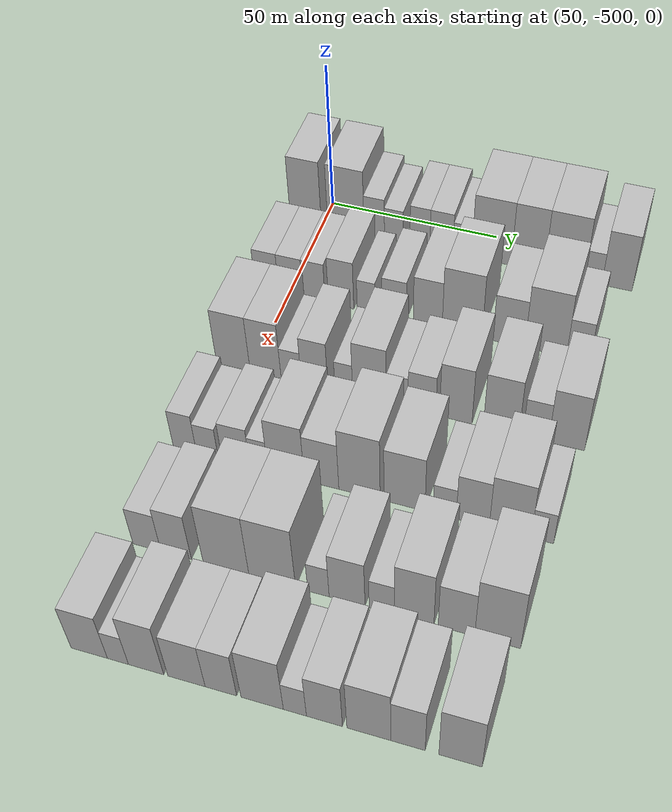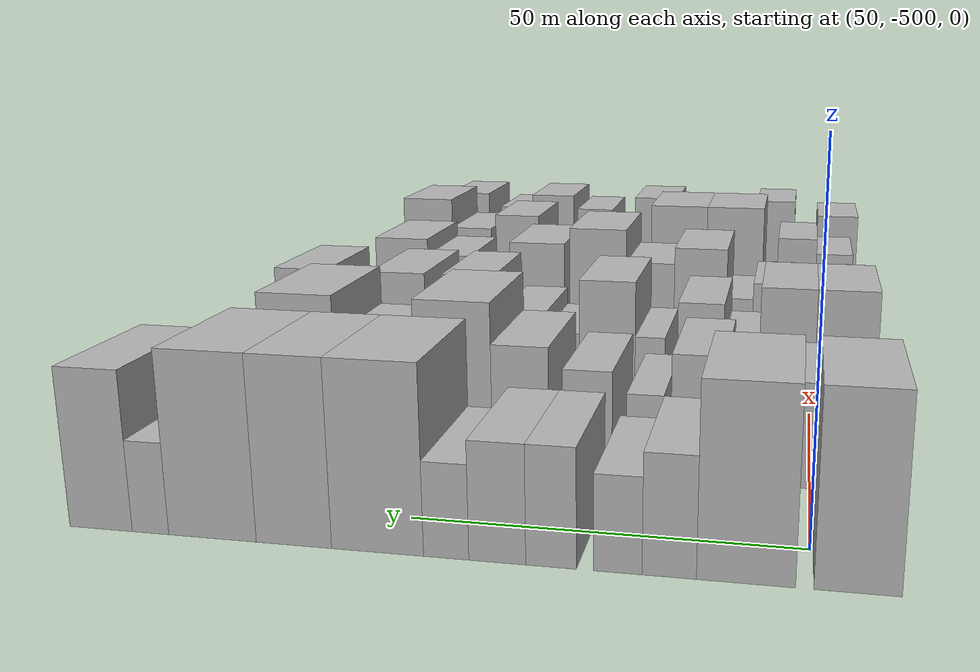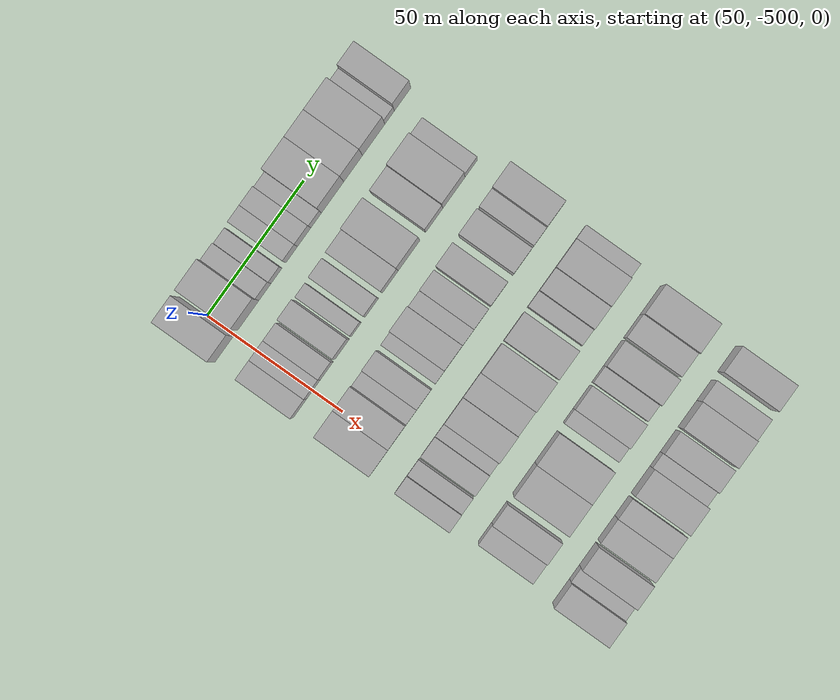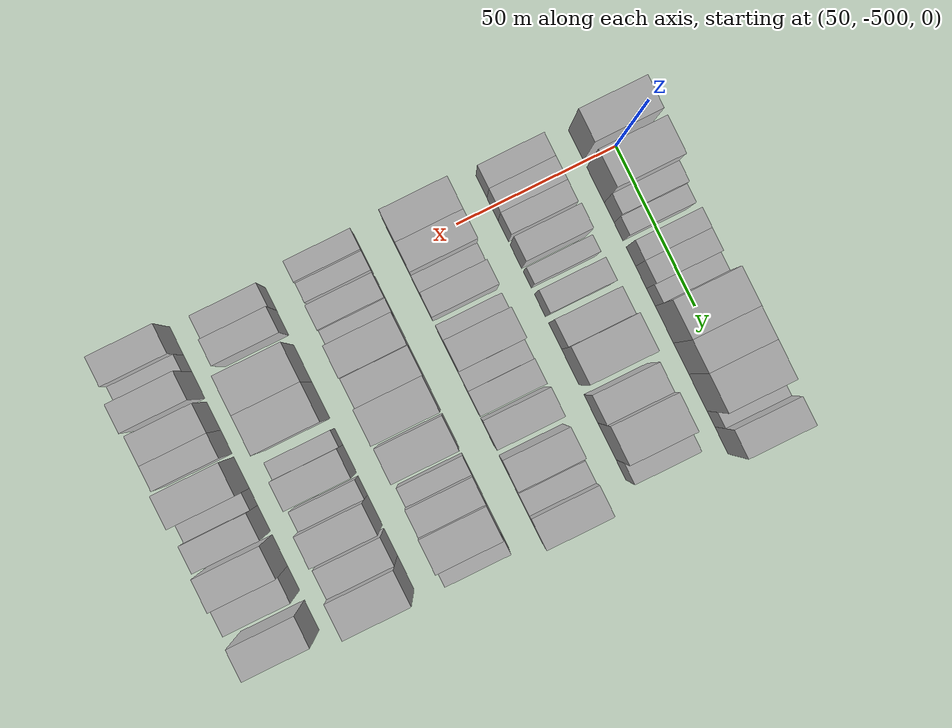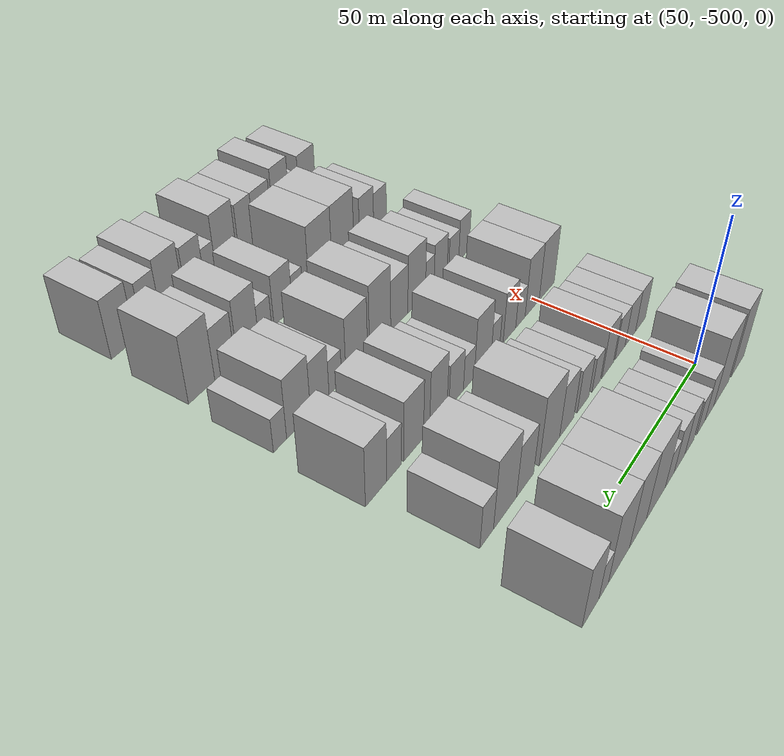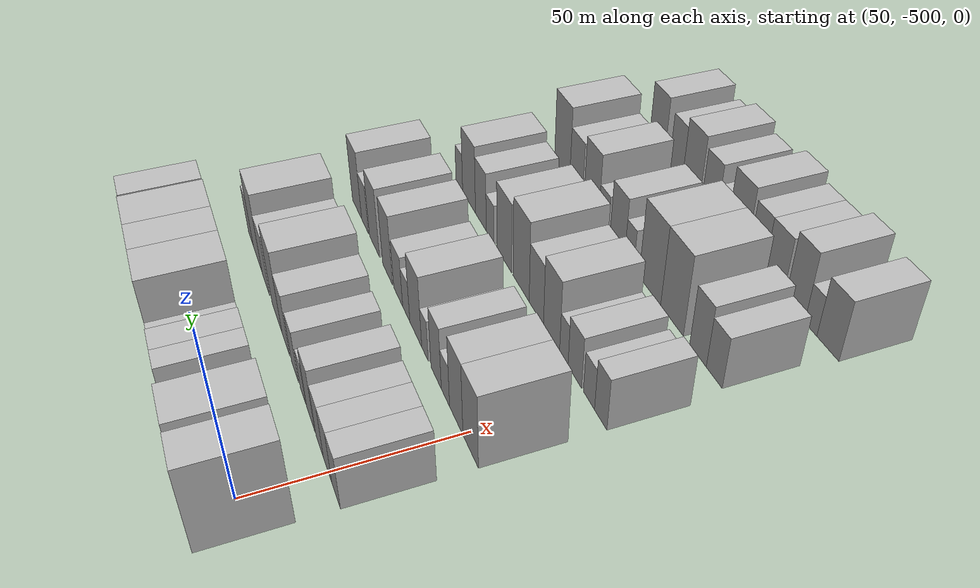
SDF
<sdf version="1.6">
 <world name="default">
  <model name="building_1">
   <static>1</static>
   <pose>50.0000 -505.1824 0 0.000000 0.000000 0.000000</pose>
   <link name="link">
    <pose>0 0 12.00 0 0 0</pose>
    <collision name="collision"><geometry><box><size>20.0000 9.6352 24.0000</size></box></geometry></collision>
    <visual name="visual">
     <cast_shadows>0</cast_shadows>
     <geometry><box><size>20.0000 9.6352 24.0000</size></box></geometry>
     <material>
      <script>
       <uri>model://HANNAS_wall/materials/scripts</uri>
       <uri>model://HANNAS_wall/materials/textures</uri>
       <name>vrc/HANNAS_wall</name>
      </script>
     </material>
    </visual>
   </link>
  </model>
  <model name="building_2">
   <static>1</static>
   <pose>50.0000 -492.7934 0 0.000000 0.000000 0.000000</pose>
   <link name="link">
    <pose>0 0 12.00 0 0 0</pose>
    <collision name="collision"><geometry><box><size>20.0000 11.1428 24.0000</size></box></geometry></collision>
    <visual name="visual">
     <cast_shadows>0</cast_shadows>
     <geometry><box><size>20.0000 11.1428 24.0000</size></box></geometry>
     <material>
      <script>
       <uri>model://HANNAS_wall/materials/scripts</uri>
       <uri>model://HANNAS_wall/materials/textures</uri>
       <name>vrc/HANNAS_wall</name>
      </script>
     </material>
    </visual>
   </link>
  </model>
  <model name="building_3">
   <static>1</static>
   <pose>50.0000 -484.1004 0 0.000000 0.000000 0.000000</pose>
   <link name="link">
    <pose>0 0 7.50 0 0 0</pose>
    <collision name="collision"><geometry><box><size>20.0000 6.2432 15.0000</size></box></geometry></collision>
    <visual name="visual">
     <cast_shadows>0</cast_shadows>
     <geometry><box><size>20.0000 6.2432 15.0000</size></box></geometry>
     <material>
      <script>
       <uri>model://HANNAS_wall/materials/scripts</uri>
       <uri>model://HANNAS_wall/materials/textures</uri>
       <name>vrc/HANNAS_wall</name>
      </script>
     </material>
    </visual>
   </link>
  </model>
  <model name="building_4">
   <static>1</static>
   <pose>50.0000 -478.1374 0 0.000000 0.000000 0.000000</pose>
   <link name="link">
    <pose>0 0 6.00 0 0 0</pose>
    <collision name="collision"><geometry><box><size>20.0000 5.6829 12.0000</size></box></geometry></collision>
    <visual name="visual">
     <cast_shadows>0</cast_shadows>
     <geometry><box><size>20.0000 5.6829 12.0000</size></box></geometry>
     <material>
      <script>
       <uri>model://HANNAS_wall/materials/scripts</uri>
       <uri>model://HANNAS_wall/materials/textures</uri>
       <name>vrc/HANNAS_wall</name>
      </script>
     </material>
    </visual>
   </link>
  </model>
  <model name="building_5">
   <static>1</static>
   <pose>50.0000 -470.2839 0 0.000000 0.000000 0.000000</pose>
   <link name="link">
    <pose>0 0 7.50 0 0 0</pose>
    <collision name="collision"><geometry><box><size>20.0000 6.0241 15.0000</size></box></geometry></collision>
    <visual name="visual">
     <cast_shadows>0</cast_shadows>
     <geometry><box><size>20.0000 6.0241 15.0000</size></box></geometry>
     <material>
      <script>
       <uri>model://HANNAS_wall/materials/scripts</uri>
       <uri>model://HANNAS_wall/materials/textures</uri>
       <name>vrc/HANNAS_wall</name>
      </script>
     </material>
    </visual>
   </link>
  </model>
  <model name="building_6">
   <static>1</static>
   <pose>50.0000 -463.8280 0 0.000000 0.000000 0.000000</pose>
   <link name="link">
    <pose>0 0 7.50 0 0 0</pose>
    <collision name="collision"><geometry><box><size>20.0000 6.8877 15.0000</size></box></geometry></collision>
    <visual name="visual">
     <cast_shadows>0</cast_shadows>
     <geometry><box><size>20.0000 6.8877 15.0000</size></box></geometry>
     <material>
      <script>
       <uri>model://HANNAS_wall/materials/scripts</uri>
       <uri>model://HANNAS_wall/materials/textures</uri>
       <name>vrc/HANNAS_wall</name>
      </script>
     </material>
    </visual>
   </link>
  </model>
  <model name="building_7">
   <static>1</static>
   <pose>50.0000 -457.6014 0 0.000000 0.000000 0.000000</pose>
   <link name="link">
    <pose>0 0 6.00 0 0 0</pose>
    <collision name="collision"><geometry><box><size>20.0000 5.5657 12.0000</size></box></geometry></collision>
    <visual name="visual">
     <cast_shadows>0</cast_shadows>
     <geometry><box><size>20.0000 5.5657 12.0000</size></box></geometry>
     <material>
      <script>
       <uri>model://HANNAS_wall/materials/scripts</uri>
       <uri>model://HANNAS_wall/materials/textures</uri>
       <name>vrc/HANNAS_wall</name>
      </script>
     </material>
    </visual>
   </link>
  </model>
  <model name="building_8">
   <static>1</static>
   <pose>50.0000 -449.0417 0 0.000000 0.000000 0.000000</pose>
   <link name="link">
    <pose>0 0 12.00 0 0 0</pose>
    <collision name="collision"><geometry><box><size>20.0000 11.5537 24.0000</size></box></geometry></collision>
    <visual name="visual">
     <cast_shadows>0</cast_shadows>
     <geometry><box><size>20.0000 11.5537 24.0000</size></box></geometry>
     <material>
      <script>
       <uri>model://HANNAS_wall/materials/scripts</uri>
       <uri>model://HANNAS_wall/materials/textures</uri>
       <name>vrc/HANNAS_wall</name>
      </script>
     </material>
    </visual>
   </link>
  </model>
  <model name="building_9">
   <static>1</static>
   <pose>50.0000 -438.4060 0 0.000000 0.000000 0.000000</pose>
   <link name="link">
    <pose>0 0 12.00 0 0 0</pose>
    <collision name="collision"><geometry><box><size>20.0000 9.7178 24.0000</size></box></geometry></collision>
    <visual name="visual">
     <cast_shadows>0</cast_shadows>
     <geometry><box><size>20.0000 9.7178 24.0000</size></box></geometry>
     <material>
      <script>
       <uri>model://HANNAS_wall/materials/scripts</uri>
       <uri>model://HANNAS_wall/materials/textures</uri>
       <name>vrc/HANNAS_wall</name>
      </script>
     </material>
    </visual>
   </link>
  </model>
  <model name="building_10">
   <static>1</static>
   <pose>50.0000 -427.7512 0 0.000000 0.000000 0.000000</pose>
   <link name="link">
    <pose>0 0 12.00 0 0 0</pose>
    <collision name="collision"><geometry><box><size>20.0000 11.5917 24.0000</size></box></geometry></collision>
    <visual name="visual">
     <cast_shadows>0</cast_shadows>
     <geometry><box><size>20.0000 11.5917 24.0000</size></box></geometry>
     <material>
      <script>
       <uri>model://HANNAS_wall/materials/scripts</uri>
       <uri>model://HANNAS_wall/materials/textures</uri>
       <name>vrc/HANNAS_wall</name>
      </script>
     </material>
    </visual>
   </link>
  </model>
  <model name="building_11">
   <static>1</static>
   <pose>50.0000 -419.4948 0 0.000000 0.000000 0.000000</pose>
   <link name="link">
    <pose>0 0 6.00 0 0 0</pose>
    <collision name="collision"><geometry><box><size>20.0000 4.9211 12.0000</size></box></geometry></collision>
    <visual name="visual">
     <cast_shadows>0</cast_shadows>
     <geometry><box><size>20.0000 4.9211 12.0000</size></box></geometry>
     <material>
      <script>
       <uri>model://HANNAS_wall/materials/scripts</uri>
       <uri>model://HANNAS_wall/materials/textures</uri>
       <name>vrc/HANNAS_wall</name>
      </script>
     </material>
    </visual>
   </link>
  </model>
  <model name="building_12">
   <static>1</static>
   <pose>50.0000 -412.7558 0 0.000000 0.000000 0.000000</pose>
   <link name="link">
    <pose>0 0 10.50 0 0 0</pose>
    <collision name="collision"><geometry><box><size>20.0000 8.5569 21.0000</size></box></geometry></collision>
    <visual name="visual">
     <cast_shadows>0</cast_shadows>
     <geometry><box><size>20.0000 8.5569 21.0000</size></box></geometry>
     <material>
      <script>
       <uri>model://HANNAS_wall/materials/scripts</uri>
       <uri>model://HANNAS_wall/materials/textures</uri>
       <name>vrc/HANNAS_wall</name>
      </script>
     </material>
    </visual>
   </link>
  </model>
  <model name="building_115">
   <static>1</static>
   <pose>79.0000 -506.4969 0 0.000000 0.000000 0.000000</pose>
   <link name="link">
    <pose>0 0 7.50 0 0 0</pose>
    <collision name="collision"><geometry><box><size>20.0000 7.0061 15.0000</size></box></geometry></collision>
    <visual name="visual">
     <cast_shadows>0</cast_shadows>
     <geometry><box><size>20.0000 7.0061 15.0000</size></box></geometry>
     <material>
      <script>
       <uri>model://HANNAS_wall/materials/scripts</uri>
       <uri>model://HANNAS_wall/materials/textures</uri>
       <name>vrc/HANNAS_wall</name>
      </script>
     </material>
    </visual>
   </link>
  </model>
  <model name="building_116">
   <static>1</static>
   <pose>79.0000 -499.4361 0 0.000000 0.000000 0.000000</pose>
   <link name="link">
    <pose>0 0 7.50 0 0 0</pose>
    <collision name="collision"><geometry><box><size>20.0000 7.1155 15.0000</size></box></geometry></collision>
    <visual name="visual">
     <cast_shadows>0</cast_shadows>
     <geometry><box><size>20.0000 7.1155 15.0000</size></box></geometry>
     <material>
      <script>
       <uri>model://HANNAS_wall/materials/scripts</uri>
       <uri>model://HANNAS_wall/materials/textures</uri>
       <name>vrc/HANNAS_wall</name>
      </script>
     </material>
    </visual>
   </link>
  </model>
  <model name="building_117">
   <static>1</static>
   <pose>79.0000 -492.5892 0 0.000000 0.000000 0.000000</pose>
   <link name="link">
    <pose>0 0 7.50 0 0 0</pose>
    <collision name="collision"><geometry><box><size>20.0000 6.5782 15.0000</size></box></geometry></collision>
    <visual name="visual">
     <cast_shadows>0</cast_shadows>
     <geometry><box><size>20.0000 6.5782 15.0000</size></box></geometry>
     <material>
      <script>
       <uri>model://HANNAS_wall/materials/scripts</uri>
       <uri>model://HANNAS_wall/materials/textures</uri>
       <name>vrc/HANNAS_wall</name>
      </script>
     </material>
    </visual>
   </link>
  </model>
  <model name="building_118">
   <static>1</static>
   <pose>79.0000 -484.6116 0 0.000000 0.000000 0.000000</pose>
   <link name="link">
    <pose>0 0 9.00 0 0 0</pose>
    <collision name="collision"><geometry><box><size>20.0000 7.3770 18.0000</size></box></geometry></collision>
    <visual name="visual">
     <cast_shadows>0</cast_shadows>
     <geometry><box><size>20.0000 7.3770 18.0000</size></box></geometry>
     <material>
      <script>
       <uri>model://HANNAS_wall/materials/scripts</uri>
       <uri>model://HANNAS_wall/materials/textures</uri>
       <name>vrc/HANNAS_wall</name>
      </script>
     </material>
    </visual>
   </link>
  </model>
  <model name="building_119">
   <static>1</static>
   <pose>79.0000 -477.3435 0 0.000000 0.000000 0.000000</pose>
   <link name="link">
    <pose>0 0 6.00 0 0 0</pose>
    <collision name="collision"><geometry><box><size>20.0000 5.1593 12.0000</size></box></geometry></collision>
    <visual name="visual">
     <cast_shadows>0</cast_shadows>
     <geometry><box><size>20.0000 5.1593 12.0000</size></box></geometry>
     <material>
      <script>
       <uri>model://HANNAS_wall/materials/scripts</uri>
       <uri>model://HANNAS_wall/materials/textures</uri>
       <name>vrc/HANNAS_wall</name>
      </script>
     </material>
    </visual>
   </link>
  </model>
  <model name="building_120">
   <static>1</static>
   <pose>79.0000 -469.2882 0 0.000000 0.000000 0.000000</pose>
   <link name="link">
    <pose>0 0 7.50 0 0 0</pose>
    <collision name="collision"><geometry><box><size>20.0000 6.9513 15.0000</size></box></geometry></collision>
    <visual name="visual">
     <cast_shadows>0</cast_shadows>
     <geometry><box><size>20.0000 6.9513 15.0000</size></box></geometry>
     <material>
      <script>
       <uri>model://HANNAS_wall/materials/scripts</uri>
       <uri>model://HANNAS_wall/materials/textures</uri>
       <name>vrc/HANNAS_wall</name>
      </script>
     </material>
    </visual>
   </link>
  </model>
  <model name="building_121">
   <static>1</static>
   <pose>79.0000 -459.7098 0 0.000000 0.000000 0.000000</pose>
   <link name="link">
    <pose>0 0 9.00 0 0 0</pose>
    <collision name="collision"><geometry><box><size>20.0000 8.2055 18.0000</size></box></geometry></collision>
    <visual name="visual">
     <cast_shadows>0</cast_shadows>
     <geometry><box><size>20.0000 8.2055 18.0000</size></box></geometry>
     <material>
      <script>
       <uri>model://HANNAS_wall/materials/scripts</uri>
       <uri>model://HANNAS_wall/materials/textures</uri>
       <name>vrc/HANNAS_wall</name>
      </script>
     </material>
    </visual>
   </link>
  </model>
  <model name="building_122">
   <static>1</static>
   <pose>79.0000 -450.0084 0 0.000000 0.000000 0.000000</pose>
   <link name="link">
    <pose>0 0 12.00 0 0 0</pose>
    <collision name="collision"><geometry><box><size>20.0000 11.1972 24.0000</size></box></geometry></collision>
    <visual name="visual">
     <cast_shadows>0</cast_shadows>
     <geometry><box><size>20.0000 11.1972 24.0000</size></box></geometry>
     <material>
      <script>
       <uri>model://HANNAS_wall/materials/scripts</uri>
       <uri>model://HANNAS_wall/materials/textures</uri>
       <name>vrc/HANNAS_wall</name>
      </script>
     </material>
    </visual>
   </link>
  </model>
  <model name="building_123">
   <static>1</static>
   <pose>79.0000 -436.9670 0 0.000000 0.000000 0.000000</pose>
   <link name="link">
    <pose>0 0 9.00 0 0 0</pose>
    <collision name="collision"><geometry><box><size>20.0000 8.8857 18.0000</size></box></geometry></collision>
    <visual name="visual">
     <cast_shadows>0</cast_shadows>
     <geometry><box><size>20.0000 8.8857 18.0000</size></box></geometry>
     <material>
      <script>
       <uri>model://HANNAS_wall/materials/scripts</uri>
       <uri>model://HANNAS_wall/materials/textures</uri>
       <name>vrc/HANNAS_wall</name>
      </script>
     </material>
    </visual>
   </link>
  </model>
  <model name="building_124">
   <static>1</static>
   <pose>79.0000 -426.8222 0 0.000000 0.000000 0.000000</pose>
   <link name="link">
    <pose>0 0 12.00 0 0 0</pose>
    <collision name="collision"><geometry><box><size>20.0000 11.4038 24.0000</size></box></geometry></collision>
    <visual name="visual">
     <cast_shadows>0</cast_shadows>
     <geometry><box><size>20.0000 11.4038 24.0000</size></box></geometry>
     <material>
      <script>
       <uri>model://HANNAS_wall/materials/scripts</uri>
       <uri>model://HANNAS_wall/materials/textures</uri>
       <name>vrc/HANNAS_wall</name>
      </script>
     </material>
    </visual>
   </link>
  </model>
  <model name="building_125">
   <static>1</static>
   <pose>79.0000 -417.8935 0 0.000000 0.000000 0.000000</pose>
   <link name="link">
    <pose>0 0 7.50 0 0 0</pose>
    <collision name="collision"><geometry><box><size>20.0000 6.4534 15.0000</size></box></geometry></collision>
    <visual name="visual">
     <cast_shadows>0</cast_shadows>
     <geometry><box><size>20.0000 6.4534 15.0000</size></box></geometry>
     <material>
      <script>
       <uri>model://HANNAS_wall/materials/scripts</uri>
       <uri>model://HANNAS_wall/materials/textures</uri>
       <name>vrc/HANNAS_wall</name>
      </script>
     </material>
    </visual>
   </link>
  </model>
  <model name="building_225">
   <static>1</static>
   <pose>108.0000 -505.2097 0 0.000000 0.000000 0.000000</pose>
   <link name="link">
    <pose>0 0 10.50 0 0 0</pose>
    <collision name="collision"><geometry><box><size>20.0000 9.5805 21.0000</size></box></geometry></collision>
    <visual name="visual">
     <cast_shadows>0</cast_shadows>
     <geometry><box><size>20.0000 9.5805 21.0000</size></box></geometry>
     <material>
      <script>
       <uri>model://HANNAS_wall/materials/scripts</uri>
       <uri>model://HANNAS_wall/materials/textures</uri>
       <name>vrc/HANNAS_wall</name>
      </script>
     </material>
    </visual>
   </link>
  </model>
  <model name="building_226">
   <static>1</static>
   <pose>108.0000 -496.0540 0 0.000000 0.000000 0.000000</pose>
   <link name="link">
    <pose>0 0 10.50 0 0 0</pose>
    <collision name="collision"><geometry><box><size>20.0000 8.7310 21.0000</size></box></geometry></collision>
    <visual name="visual">
     <cast_shadows>0</cast_shadows>
     <geometry><box><size>20.0000 8.7310 21.0000</size></box></geometry>
     <material>
      <script>
       <uri>model://HANNAS_wall/materials/scripts</uri>
       <uri>model://HANNAS_wall/materials/textures</uri>
       <name>vrc/HANNAS_wall</name>
      </script>
     </material>
    </visual>
   </link>
  </model>
  <model name="building_227">
   <static>1</static>
   <pose>108.0000 -488.8668 0 0.000000 0.000000 0.000000</pose>
   <link name="link">
    <pose>0 0 6.00 0 0 0</pose>
    <collision name="collision"><geometry><box><size>20.0000 5.6433 12.0000</size></box></geometry></collision>
    <visual name="visual">
     <cast_shadows>0</cast_shadows>
     <geometry><box><size>20.0000 5.6433 12.0000</size></box></geometry>
     <material>
      <script>
       <uri>model://HANNAS_wall/materials/scripts</uri>
       <uri>model://HANNAS_wall/materials/textures</uri>
       <name>vrc/HANNAS_wall</name>
      </script>
     </material>
    </visual>
   </link>
  </model>
  <model name="building_228">
   <static>1</static>
   <pose>108.0000 -482.3638 0 0.000000 0.000000 0.000000</pose>
   <link name="link">
    <pose>0 0 9.00 0 0 0</pose>
    <collision name="collision"><geometry><box><size>20.0000 7.3627 18.0000</size></box></geometry></collision>
    <visual name="visual">
     <cast_shadows>0</cast_shadows>
     <geometry><box><size>20.0000 7.3627 18.0000</size></box></geometry>
     <material>
      <script>
       <uri>model://HANNAS_wall/materials/scripts</uri>
       <uri>model://HANNAS_wall/materials/textures</uri>
       <name>vrc/HANNAS_wall</name>
      </script>
     </material>
    </visual>
   </link>
  </model>
  <model name="building_229">
   <static>1</static>
   <pose>108.0000 -474.2569 0 0.000000 0.000000 0.000000</pose>
   <link name="link">
    <pose>0 0 6.00 0 0 0</pose>
    <collision name="collision"><geometry><box><size>20.0000 4.8511 12.0000</size></box></geometry></collision>
    <visual name="visual">
     <cast_shadows>0</cast_shadows>
     <geometry><box><size>20.0000 4.8511 12.0000</size></box></geometry>
     <material>
      <script>
       <uri>model://HANNAS_wall/materials/scripts</uri>
       <uri>model://HANNAS_wall/materials/textures</uri>
       <name>vrc/HANNAS_wall</name>
      </script>
     </material>
    </visual>
   </link>
  </model>
  <model name="building_230">
   <static>1</static>
   <pose>108.0000 -467.2339 0 0.000000 0.000000 0.000000</pose>
   <link name="link">
    <pose>0 0 10.50 0 0 0</pose>
    <collision name="collision"><geometry><box><size>20.0000 9.1948 21.0000</size></box></geometry></collision>
    <visual name="visual">
     <cast_shadows>0</cast_shadows>
     <geometry><box><size>20.0000 9.1948 21.0000</size></box></geometry>
     <material>
      <script>
       <uri>model://HANNAS_wall/materials/scripts</uri>
       <uri>model://HANNAS_wall/materials/textures</uri>
       <name>vrc/HANNAS_wall</name>
      </script>
     </material>
    </visual>
   </link>
  </model>
  <model name="building_231">
   <static>1</static>
   <pose>108.0000 -459.7230 0 0.000000 0.000000 0.000000</pose>
   <link name="link">
    <pose>0 0 6.00 0 0 0</pose>
    <collision name="collision"><geometry><box><size>20.0000 5.8271 12.0000</size></box></geometry></collision>
    <visual name="visual">
     <cast_shadows>0</cast_shadows>
     <geometry><box><size>20.0000 5.8271 12.0000</size></box></geometry>
     <material>
      <script>
       <uri>model://HANNAS_wall/materials/scripts</uri>
       <uri>model://HANNAS_wall/materials/textures</uri>
       <name>vrc/HANNAS_wall</name>
      </script>
     </material>
    </visual>
   </link>
  </model>
  <model name="building_232">
   <static>1</static>
   <pose>108.0000 -453.0677 0 0.000000 0.000000 0.000000</pose>
   <link name="link">
    <pose>0 0 7.50 0 0 0</pose>
    <collision name="collision"><geometry><box><size>20.0000 7.4834 15.0000</size></box></geometry></collision>
    <visual name="visual">
     <cast_shadows>0</cast_shadows>
     <geometry><box><size>20.0000 7.4834 15.0000</size></box></geometry>
     <material>
      <script>
       <uri>model://HANNAS_wall/materials/scripts</uri>
       <uri>model://HANNAS_wall/materials/textures</uri>
       <name>vrc/HANNAS_wall</name>
      </script>
     </material>
    </visual>
   </link>
  </model>
  <model name="building_233">
   <static>1</static>
   <pose>108.0000 -444.0097 0 0.000000 0.000000 0.000000</pose>
   <link name="link">
    <pose>0 0 10.50 0 0 0</pose>
    <collision name="collision"><geometry><box><size>20.0000 8.6326 21.0000</size></box></geometry></collision>
    <visual name="visual">
     <cast_shadows>0</cast_shadows>
     <geometry><box><size>20.0000 8.6326 21.0000</size></box></geometry>
     <material>
      <script>
       <uri>model://HANNAS_wall/materials/scripts</uri>
       <uri>model://HANNAS_wall/materials/textures</uri>
       <name>vrc/HANNAS_wall</name>
      </script>
     </material>
    </visual>
   </link>
  </model>
  <model name="building_234">
   <static>1</static>
   <pose>108.0000 -432.0242 0 0.000000 0.000000 0.000000</pose>
   <link name="link">
    <pose>0 0 10.50 0 0 0</pose>
    <collision name="collision"><geometry><box><size>20.0000 9.3385 21.0000</size></box></geometry></collision>
    <visual name="visual">
     <cast_shadows>0</cast_shadows>
     <geometry><box><size>20.0000 9.3385 21.0000</size></box></geometry>
     <material>
      <script>
       <uri>model://HANNAS_wall/materials/scripts</uri>
       <uri>model://HANNAS_wall/materials/textures</uri>
       <name>vrc/HANNAS_wall</name>
      </script>
     </material>
    </visual>
   </link>
  </model>
  <model name="building_235">
   <static>1</static>
   <pose>108.0000 -423.0164 0 0.000000 0.000000 0.000000</pose>
   <link name="link">
    <pose>0 0 7.50 0 0 0</pose>
    <collision name="collision"><geometry><box><size>20.0000 6.6770 15.0000</size></box></geometry></collision>
    <visual name="visual">
     <cast_shadows>0</cast_shadows>
     <geometry><box><size>20.0000 6.6770 15.0000</size></box></geometry>
     <material>
      <script>
       <uri>model://HANNAS_wall/materials/scripts</uri>
       <uri>model://HANNAS_wall/materials/textures</uri>
       <name>vrc/HANNAS_wall</name>
      </script>
     </material>
    </visual>
   </link>
  </model>
  <model name="building_236">
   <static>1</static>
   <pose>108.0000 -415.0334 0 0.000000 0.000000 0.000000</pose>
   <link name="link">
    <pose>0 0 10.50 0 0 0</pose>
    <collision name="collision"><geometry><box><size>20.0000 9.2890 21.0000</size></box></geometry></collision>
    <visual name="visual">
     <cast_shadows>0</cast_shadows>
     <geometry><box><size>20.0000 9.2890 21.0000</size></box></geometry>
     <material>
      <script>
       <uri>model://HANNAS_wall/materials/scripts</uri>
       <uri>model://HANNAS_wall/materials/textures</uri>
       <name>vrc/HANNAS_wall</name>
      </script>
     </material>
    </visual>
   </link>
  </model>
  <model name="building_340">
   <static>1</static>
   <pose>137.0000 -506.8464 0 0.000000 0.000000 0.000000</pose>
   <link name="link">
    <pose>0 0 7.50 0 0 0</pose>
    <collision name="collision"><geometry><box><size>20.0000 6.3073 15.0000</size></box></geometry></collision>
    <visual name="visual">
     <cast_shadows>0</cast_shadows>
     <geometry><box><size>20.0000 6.3073 15.0000</size></box></geometry>
     <material>
      <script>
       <uri>model://HANNAS_wall/materials/scripts</uri>
       <uri>model://HANNAS_wall/materials/textures</uri>
       <name>vrc/HANNAS_wall</name>
      </script>
     </material>
    </visual>
   </link>
  </model>
  <model name="building_341">
   <static>1</static>
   <pose>137.0000 -500.7608 0 0.000000 0.000000 0.000000</pose>
   <link name="link">
    <pose>0 0 6.00 0 0 0</pose>
    <collision name="collision"><geometry><box><size>20.0000 5.8638 12.0000</size></box></geometry></collision>
    <visual name="visual">
     <cast_shadows>0</cast_shadows>
     <geometry><box><size>20.0000 5.8638 12.0000</size></box></geometry>
     <material>
      <script>
       <uri>model://HANNAS_wall/materials/scripts</uri>
       <uri>model://HANNAS_wall/materials/textures</uri>
       <name>vrc/HANNAS_wall</name>
      </script>
     </material>
    </visual>
   </link>
  </model>
  <model name="building_342">
   <static>1</static>
   <pose>137.0000 -493.1045 0 0.000000 0.000000 0.000000</pose>
   <link name="link">
    <pose>0 0 7.50 0 0 0</pose>
    <collision name="collision"><geometry><box><size>20.0000 7.4489 15.0000</size></box></geometry></collision>
    <visual name="visual">
     <cast_shadows>0</cast_shadows>
     <geometry><box><size>20.0000 7.4489 15.0000</size></box></geometry>
     <material>
      <script>
       <uri>model://HANNAS_wall/materials/scripts</uri>
       <uri>model://HANNAS_wall/materials/textures</uri>
       <name>vrc/HANNAS_wall</name>
      </script>
     </material>
    </visual>
   </link>
  </model>
  <model name="building_343">
   <static>1</static>
   <pose>137.0000 -486.9685 0 0.000000 0.000000 0.000000</pose>
   <link name="link">
    <pose>0 0 6.00 0 0 0</pose>
    <collision name="collision"><geometry><box><size>20.0000 4.8232 12.0000</size></box></geometry></collision>
    <visual name="visual">
     <cast_shadows>0</cast_shadows>
     <geometry><box><size>20.0000 4.8232 12.0000</size></box></geometry>
     <material>
      <script>
       <uri>model://HANNAS_wall/materials/scripts</uri>
       <uri>model://HANNAS_wall/materials/textures</uri>
       <name>vrc/HANNAS_wall</name>
      </script>
     </material>
    </visual>
   </link>
  </model>
  <model name="building_344">
   <static>1</static>
   <pose>137.0000 -479.7535 0 0.000000 0.000000 0.000000</pose>
   <link name="link">
    <pose>0 0 10.50 0 0 0</pose>
    <collision name="collision"><geometry><box><size>20.0000 9.6067 21.0000</size></box></geometry></collision>
    <visual name="visual">
     <cast_shadows>0</cast_shadows>
     <geometry><box><size>20.0000 9.6067 21.0000</size></box></geometry>
     <material>
      <script>
       <uri>model://HANNAS_wall/materials/scripts</uri>
       <uri>model://HANNAS_wall/materials/textures</uri>
       <name>vrc/HANNAS_wall</name>
      </script>
     </material>
    </visual>
   </link>
  </model>
  <model name="building_345">
   <static>1</static>
   <pose>137.0000 -470.4724 0 0.000000 0.000000 0.000000</pose>
   <link name="link">
    <pose>0 0 9.00 0 0 0</pose>
    <collision name="collision"><geometry><box><size>20.0000 8.9556 18.0000</size></box></geometry></collision>
    <visual name="visual">
     <cast_shadows>0</cast_shadows>
     <geometry><box><size>20.0000 8.9556 18.0000</size></box></geometry>
     <material>
      <script>
       <uri>model://HANNAS_wall/materials/scripts</uri>
       <uri>model://HANNAS_wall/materials/textures</uri>
       <name>vrc/HANNAS_wall</name>
      </script>
     </material>
    </visual>
   </link>
  </model>
  <model name="building_346">
   <static>1</static>
   <pose>137.0000 -460.6689 0 0.000000 0.000000 0.000000</pose>
   <link name="link">
    <pose>0 0 12.00 0 0 0</pose>
    <collision name="collision"><geometry><box><size>20.0000 10.6514 24.0000</size></box></geometry></collision>
    <visual name="visual">
     <cast_shadows>0</cast_shadows>
     <geometry><box><size>20.0000 10.6514 24.0000</size></box></geometry>
     <material>
      <script>
       <uri>model://HANNAS_wall/materials/scripts</uri>
       <uri>model://HANNAS_wall/materials/textures</uri>
       <name>vrc/HANNAS_wall</name>
      </script>
     </material>
    </visual>
   </link>
  </model>
  <model name="building_347">
   <static>1</static>
   <pose>137.0000 -449.1504 0 0.000000 0.000000 0.000000</pose>
   <link name="link">
    <pose>0 0 10.50 0 0 0</pose>
    <collision name="collision"><geometry><box><size>20.0000 10.3856 21.0000</size></box></geometry></collision>
    <visual name="visual">
     <cast_shadows>0</cast_shadows>
     <geometry><box><size>20.0000 10.3856 21.0000</size></box></geometry>
     <material>
      <script>
       <uri>model://HANNAS_wall/materials/scripts</uri>
       <uri>model://HANNAS_wall/materials/textures</uri>
       <name>vrc/HANNAS_wall</name>
      </script>
     </material>
    </visual>
   </link>
  </model>
  <model name="building_348">
   <static>1</static>
   <pose>137.0000 -439.0455 0 0.000000 0.000000 0.000000</pose>
   <link name="link">
    <pose>0 0 6.00 0 0 0</pose>
    <collision name="collision"><geometry><box><size>20.0000 5.8240 12.0000</size></box></geometry></collision>
    <visual name="visual">
     <cast_shadows>0</cast_shadows>
     <geometry><box><size>20.0000 5.8240 12.0000</size></box></geometry>
     <material>
      <script>
       <uri>model://HANNAS_wall/materials/scripts</uri>
       <uri>model://HANNAS_wall/materials/textures</uri>
       <name>vrc/HANNAS_wall</name>
      </script>
     </material>
    </visual>
   </link>
  </model>
  <model name="building_349">
   <static>1</static>
   <pose>137.0000 -432.0126 0 0.000000 0.000000 0.000000</pose>
   <link name="link">
    <pose>0 0 9.00 0 0 0</pose>
    <collision name="collision"><geometry><box><size>20.0000 8.2417 18.0000</size></box></geometry></collision>
    <visual name="visual">
     <cast_shadows>0</cast_shadows>
     <geometry><box><size>20.0000 8.2417 18.0000</size></box></geometry>
     <material>
      <script>
       <uri>model://HANNAS_wall/materials/scripts</uri>
       <uri>model://HANNAS_wall/materials/textures</uri>
       <name>vrc/HANNAS_wall</name>
      </script>
     </material>
    </visual>
   </link>
  </model>
  <model name="building_350">
   <static>1</static>
   <pose>137.0000 -422.7393 0 0.000000 0.000000 0.000000</pose>
   <link name="link">
    <pose>0 0 10.50 0 0 0</pose>
    <collision name="collision"><geometry><box><size>20.0000 10.3049 21.0000</size></box></geometry></collision>
    <visual name="visual">
     <cast_shadows>0</cast_shadows>
     <geometry><box><size>20.0000 10.3049 21.0000</size></box></geometry>
     <material>
      <script>
       <uri>model://HANNAS_wall/materials/scripts</uri>
       <uri>model://HANNAS_wall/materials/textures</uri>
       <name>vrc/HANNAS_wall</name>
      </script>
     </material>
    </visual>
   </link>
  </model>
  <model name="building_351">
   <static>1</static>
   <pose>137.0000 -414.8377 0 0.000000 0.000000 0.000000</pose>
   <link name="link">
    <pose>0 0 6.00 0 0 0</pose>
    <collision name="collision"><geometry><box><size>20.0000 5.4983 12.0000</size></box></geometry></collision>
    <visual name="visual">
     <cast_shadows>0</cast_shadows>
     <geometry><box><size>20.0000 5.4983 12.0000</size></box></geometry>
     <material>
      <script>
       <uri>model://HANNAS_wall/materials/scripts</uri>
       <uri>model://HANNAS_wall/materials/textures</uri>
       <name>vrc/HANNAS_wall</name>
      </script>
     </material>
    </visual>
   </link>
  </model>
  <model name="building_454">
   <static>1</static>
   <pose>166.0000 -504.3972 0 0.000000 0.000000 0.000000</pose>
   <link name="link">
    <pose>0 0 7.50 0 0 0</pose>
    <collision name="collision"><geometry><box><size>20.0000 7.2056 15.0000</size></box></geometry></collision>
    <visual name="visual">
     <cast_shadows>0</cast_shadows>
     <geometry><box><size>20.0000 7.2056 15.0000</size></box></geometry>
     <material>
      <script>
       <uri>model://HANNAS_wall/materials/scripts</uri>
       <uri>model://HANNAS_wall/materials/textures</uri>
       <name>vrc/HANNAS_wall</name>
      </script>
     </material>
    </visual>
   </link>
  </model>
  <model name="building_455">
   <static>1</static>
   <pose>166.0000 -496.9016 0 0.000000 0.000000 0.000000</pose>
   <link name="link">
    <pose>0 0 9.00 0 0 0</pose>
    <collision name="collision"><geometry><box><size>20.0000 7.7856 18.0000</size></box></geometry></collision>
    <visual name="visual">
     <cast_shadows>0</cast_shadows>
     <geometry><box><size>20.0000 7.7856 18.0000</size></box></geometry>
     <material>
      <script>
       <uri>model://HANNAS_wall/materials/scripts</uri>
       <uri>model://HANNAS_wall/materials/textures</uri>
       <name>vrc/HANNAS_wall</name>
      </script>
     </material>
    </visual>
   </link>
  </model>
  <model name="building_456">
   <static>1</static>
   <pose>166.0000 -484.2573 0 0.000000 0.000000 0.000000</pose>
   <link name="link">
    <pose>0 0 12.00 0 0 0</pose>
    <collision name="collision"><geometry><box><size>20.0000 11.5032 24.0000</size></box></geometry></collision>
    <visual name="visual">
     <cast_shadows>0</cast_shadows>
     <geometry><box><size>20.0000 11.5032 24.0000</size></box></geometry>
     <material>
      <script>
       <uri>model://HANNAS_wall/materials/scripts</uri>
       <uri>model://HANNAS_wall/materials/textures</uri>
       <name>vrc/HANNAS_wall</name>
      </script>
     </material>
    </visual>
   </link>
  </model>
  <model name="building_457">
   <static>1</static>
   <pose>166.0000 -472.7122 0 0.000000 0.000000 0.000000</pose>
   <link name="link">
    <pose>0 0 12.00 0 0 0</pose>
    <collision name="collision"><geometry><box><size>20.0000 11.5870 24.0000</size></box></geometry></collision>
    <visual name="visual">
     <cast_shadows>0</cast_shadows>
     <geometry><box><size>20.0000 11.5870 24.0000</size></box></geometry>
     <material>
      <script>
       <uri>model://HANNAS_wall/materials/scripts</uri>
       <uri>model://HANNAS_wall/materials/textures</uri>
       <name>vrc/HANNAS_wall</name>
      </script>
     </material>
    </visual>
   </link>
  </model>
  <model name="building_458">
   <static>1</static>
   <pose>166.0000 -461.3141 0 0.000000 0.000000 0.000000</pose>
   <link name="link">
    <pose>0 0 6.00 0 0 0</pose>
    <collision name="collision"><geometry><box><size>20.0000 5.2091 12.0000</size></box></geometry></collision>
    <visual name="visual">
     <cast_shadows>0</cast_shadows>
     <geometry><box><size>20.0000 5.2091 12.0000</size></box></geometry>
     <material>
      <script>
       <uri>model://HANNAS_wall/materials/scripts</uri>
       <uri>model://HANNAS_wall/materials/textures</uri>
       <name>vrc/HANNAS_wall</name>
      </script>
     </material>
    </visual>
   </link>
  </model>
  <model name="building_459">
   <static>1</static>
   <pose>166.0000 -454.3573 0 0.000000 0.000000 0.000000</pose>
   <link name="link">
    <pose>0 0 9.00 0 0 0</pose>
    <collision name="collision"><geometry><box><size>20.0000 8.7046 18.0000</size></box></geometry></collision>
    <visual name="visual">
     <cast_shadows>0</cast_shadows>
     <geometry><box><size>20.0000 8.7046 18.0000</size></box></geometry>
     <material>
      <script>
       <uri>model://HANNAS_wall/materials/scripts</uri>
       <uri>model://HANNAS_wall/materials/textures</uri>
       <name>vrc/HANNAS_wall</name>
      </script>
     </material>
    </visual>
   </link>
  </model>
  <model name="building_460">
   <static>1</static>
   <pose>166.0000 -446.0106 0 0.000000 0.000000 0.000000</pose>
   <link name="link">
    <pose>0 0 6.00 0 0 0</pose>
    <collision name="collision"><geometry><box><size>20.0000 5.9888 12.0000</size></box></geometry></collision>
    <visual name="visual">
     <cast_shadows>0</cast_shadows>
     <geometry><box><size>20.0000 5.9888 12.0000</size></box></geometry>
     <material>
      <script>
       <uri>model://HANNAS_wall/materials/scripts</uri>
       <uri>model://HANNAS_wall/materials/textures</uri>
       <name>vrc/HANNAS_wall</name>
      </script>
     </material>
    </visual>
   </link>
  </model>
  <model name="building_461">
   <static>1</static>
   <pose>166.0000 -438.3080 0 0.000000 0.000000 0.000000</pose>
   <link name="link">
    <pose>0 0 10.50 0 0 0</pose>
    <collision name="collision"><geometry><box><size>20.0000 9.4164 21.0000</size></box></geometry></collision>
    <visual name="visual">
     <cast_shadows>0</cast_shadows>
     <geometry><box><size>20.0000 9.4164 21.0000</size></box></geometry>
     <material>
      <script>
       <uri>model://HANNAS_wall/materials/scripts</uri>
       <uri>model://HANNAS_wall/materials/textures</uri>
       <name>vrc/HANNAS_wall</name>
      </script>
     </material>
    </visual>
   </link>
  </model>
  <model name="building_462">
   <static>1</static>
   <pose>166.0000 -428.3203 0 0.000000 0.000000 0.000000</pose>
   <link name="link">
    <pose>0 0 9.00 0 0 0</pose>
    <collision name="collision"><geometry><box><size>20.0000 8.5589 18.0000</size></box></geometry></collision>
    <visual name="visual">
     <cast_shadows>0</cast_shadows>
     <geometry><box><size>20.0000 8.5589 18.0000</size></box></geometry>
     <material>
      <script>
       <uri>model://HANNAS_wall/materials/scripts</uri>
       <uri>model://HANNAS_wall/materials/textures</uri>
       <name>vrc/HANNAS_wall</name>
      </script>
     </material>
    </visual>
   </link>
  </model>
  <model name="building_463">
   <static>1</static>
   <pose>166.0000 -418.7115 0 0.000000 0.000000 0.000000</pose>
   <link name="link">
    <pose>0 0 12.00 0 0 0</pose>
    <collision name="collision"><geometry><box><size>20.0000 10.6586 24.0000</size></box></geometry></collision>
    <visual name="visual">
     <cast_shadows>0</cast_shadows>
     <geometry><box><size>20.0000 10.6586 24.0000</size></box></geometry>
     <material>
      <script>
       <uri>model://HANNAS_wall/materials/scripts</uri>
       <uri>model://HANNAS_wall/materials/textures</uri>
       <name>vrc/HANNAS_wall</name>
      </script>
     </material>
    </visual>
   </link>
  </model>
  <model name="building_567">
   <static>1</static>
   <pose>195.0000 -505.5535 0 0.000000 0.000000 0.000000</pose>
   <link name="link">
    <pose>0 0 9.00 0 0 0</pose>
    <collision name="collision"><geometry><box><size>20.0000 8.8930 18.0000</size></box></geometry></collision>
    <visual name="visual">
     <cast_shadows>0</cast_shadows>
     <geometry><box><size>20.0000 8.8930 18.0000</size></box></geometry>
     <material>
      <script>
       <uri>model://HANNAS_wall/materials/scripts</uri>
       <uri>model://HANNAS_wall/materials/textures</uri>
       <name>vrc/HANNAS_wall</name>
      </script>
     </material>
    </visual>
   </link>
  </model>
  <model name="building_568">
   <static>1</static>
   <pose>195.0000 -498.5487 0 0.000000 0.000000 0.000000</pose>
   <link name="link">
    <pose>0 0 6.00 0 0 0</pose>
    <collision name="collision"><geometry><box><size>20.0000 5.1166 12.0000</size></box></geometry></collision>
    <visual name="visual">
     <cast_shadows>0</cast_shadows>
     <geometry><box><size>20.0000 5.1166 12.0000</size></box></geometry>
     <material>
      <script>
       <uri>model://HANNAS_wall/materials/scripts</uri>
       <uri>model://HANNAS_wall/materials/textures</uri>
       <name>vrc/HANNAS_wall</name>
      </script>
     </material>
    </visual>
   </link>
  </model>
  <model name="building_569">
   <static>1</static>
   <pose>195.0000 -491.7451 0 0.000000 0.000000 0.000000</pose>
   <link name="link">
    <pose>0 0 10.50 0 0 0</pose>
    <collision name="collision"><geometry><box><size>20.0000 8.4907 21.0000</size></box></geometry></collision>
    <visual name="visual">
     <cast_shadows>0</cast_shadows>
     <geometry><box><size>20.0000 8.4907 21.0000</size></box></geometry>
     <material>
      <script>
       <uri>model://HANNAS_wall/materials/scripts</uri>
       <uri>model://HANNAS_wall/materials/textures</uri>
       <name>vrc/HANNAS_wall</name>
      </script>
     </material>
    </visual>
   </link>
  </model>
  <model name="building_570">
   <static>1</static>
   <pose>195.0000 -482.0740 0 0.000000 0.000000 0.000000</pose>
   <link name="link">
    <pose>0 0 9.00 0 0 0</pose>
    <collision name="collision"><geometry><box><size>20.0000 8.8515 18.0000</size></box></geometry></collision>
    <visual name="visual">
     <cast_shadows>0</cast_shadows>
     <geometry><box><size>20.0000 8.8515 18.0000</size></box></geometry>
     <material>
      <script>
       <uri>model://HANNAS_wall/materials/scripts</uri>
       <uri>model://HANNAS_wall/materials/textures</uri>
       <name>vrc/HANNAS_wall</name>
      </script>
     </material>
    </visual>
   </link>
  </model>
  <model name="building_571">
   <static>1</static>
   <pose>195.0000 -473.9377 0 0.000000 0.000000 0.000000</pose>
   <link name="link">
    <pose>0 0 9.00 0 0 0</pose>
    <collision name="collision"><geometry><box><size>20.0000 7.4211 18.0000</size></box></geometry></collision>
    <visual name="visual">
     <cast_shadows>0</cast_shadows>
     <geometry><box><size>20.0000 7.4211 18.0000</size></box></geometry>
     <material>
      <script>
       <uri>model://HANNAS_wall/materials/scripts</uri>
       <uri>model://HANNAS_wall/materials/textures</uri>
       <name>vrc/HANNAS_wall</name>
      </script>
     </material>
    </visual>
   </link>
  </model>
  <model name="building_572">
   <static>1</static>
   <pose>195.0000 -464.3092 0 0.000000 0.000000 0.000000</pose>
   <link name="link">
    <pose>0 0 10.50 0 0 0</pose>
    <collision name="collision"><geometry><box><size>20.0000 9.8359 21.0000</size></box></geometry></collision>
    <visual name="visual">
     <cast_shadows>0</cast_shadows>
     <geometry><box><size>20.0000 9.8359 21.0000</size></box></geometry>
     <material>
      <script>
       <uri>model://HANNAS_wall/materials/scripts</uri>
       <uri>model://HANNAS_wall/materials/textures</uri>
       <name>vrc/HANNAS_wall</name>
      </script>
     </material>
    </visual>
   </link>
  </model>
  <model name="building_573">
   <static>1</static>
   <pose>195.0000 -456.7326 0 0.000000 0.000000 0.000000</pose>
   <link name="link">
    <pose>0 0 6.00 0 0 0</pose>
    <collision name="collision"><geometry><box><size>20.0000 5.3172 12.0000</size></box></geometry></collision>
    <visual name="visual">
     <cast_shadows>0</cast_shadows>
     <geometry><box><size>20.0000 5.3172 12.0000</size></box></geometry>
     <material>
      <script>
       <uri>model://HANNAS_wall/materials/scripts</uri>
       <uri>model://HANNAS_wall/materials/textures</uri>
       <name>vrc/HANNAS_wall</name>
      </script>
     </material>
    </visual>
   </link>
  </model>
  <model name="building_574">
   <static>1</static>
   <pose>195.0000 -449.9782 0 0.000000 0.000000 0.000000</pose>
   <link name="link">
    <pose>0 0 9.00 0 0 0</pose>
    <collision name="collision"><geometry><box><size>20.0000 8.1916 18.0000</size></box></geometry></collision>
    <visual name="visual">
     <cast_shadows>0</cast_shadows>
     <geometry><box><size>20.0000 8.1916 18.0000</size></box></geometry>
     <material>
      <script>
       <uri>model://HANNAS_wall/materials/scripts</uri>
       <uri>model://HANNAS_wall/materials/textures</uri>
       <name>vrc/HANNAS_wall</name>
      </script>
     </material>
    </visual>
   </link>
  </model>
  <model name="building_575">
   <static>1</static>
   <pose>195.0000 -439.9693 0 0.000000 0.000000 0.000000</pose>
   <link name="link">
    <pose>0 0 10.50 0 0 0</pose>
    <collision name="collision"><geometry><box><size>20.0000 9.8262 21.0000</size></box></geometry></collision>
    <visual name="visual">
     <cast_shadows>0</cast_shadows>
     <geometry><box><size>20.0000 9.8262 21.0000</size></box></geometry>
     <material>
      <script>
       <uri>model://HANNAS_wall/materials/scripts</uri>
       <uri>model://HANNAS_wall/materials/textures</uri>
       <name>vrc/HANNAS_wall</name>
      </script>
     </material>
    </visual>
   </link>
  </model>
  <model name="building_576">
   <static>1</static>
   <pose>195.0000 -431.2230 0 0.000000 0.000000 0.000000</pose>
   <link name="link">
    <pose>0 0 9.00 0 0 0</pose>
    <collision name="collision"><geometry><box><size>20.0000 7.6664 18.0000</size></box></geometry></collision>
    <visual name="visual">
     <cast_shadows>0</cast_shadows>
     <geometry><box><size>20.0000 7.6664 18.0000</size></box></geometry>
     <material>
      <script>
       <uri>model://HANNAS_wall/materials/scripts</uri>
       <uri>model://HANNAS_wall/materials/textures</uri>
       <name>vrc/HANNAS_wall</name>
      </script>
     </material>
    </visual>
   </link>
  </model>
  <model name="building_577">
   <static>1</static>
   <pose>195.0000 -419.6546 0 0.000000 0.000000 0.000000</pose>
   <link name="link">
    <pose>0 0 10.50 0 0 0</pose>
    <collision name="collision"><geometry><box><size>20.0000 9.4706 21.0000</size></box></geometry></collision>
    <visual name="visual">
     <cast_shadows>0</cast_shadows>
     <geometry><box><size>20.0000 9.4706 21.0000</size></box></geometry>
     <material>
      <script>
       <uri>model://HANNAS_wall/materials/scripts</uri>
       <uri>model://HANNAS_wall/materials/textures</uri>
       <name>vrc/HANNAS_wall</name>
      </script>
     </material>
    </visual>
   </link>
  </model>
 </world>
</sdf>
